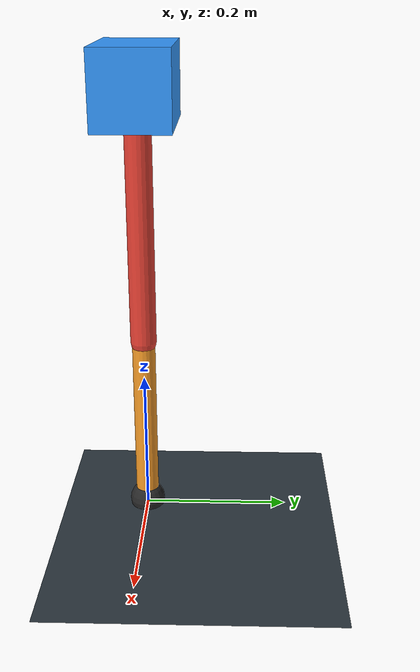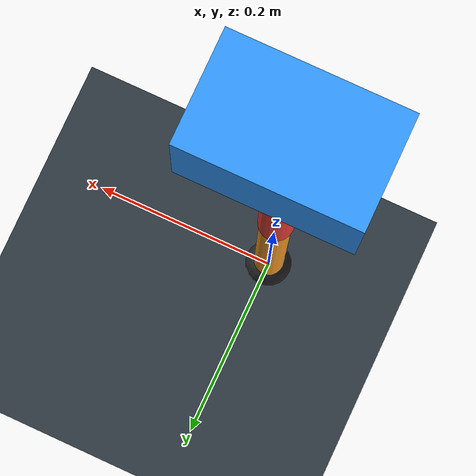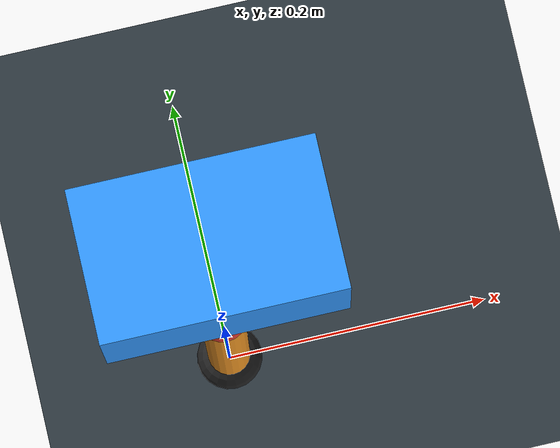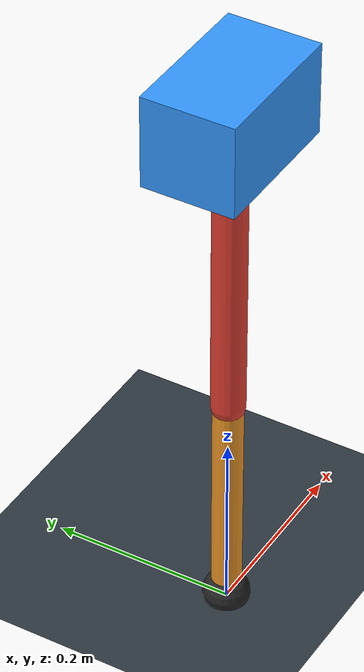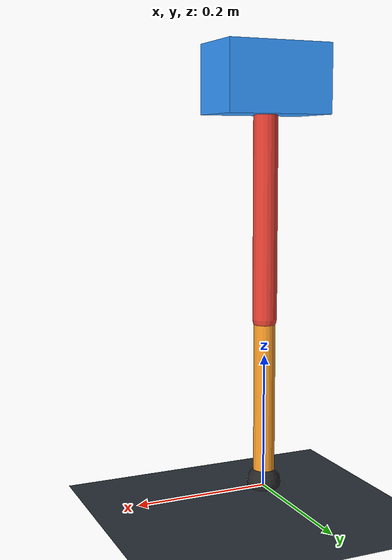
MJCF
<mujoco model="single_axis_two_bar">
  <compiler angle="radian" inertiafromgeom="true"/>
  <option timestep="0.001" integrator="implicitfast" gravity="0 0 -9.81"/>
  <default>
    <joint damping="0.08"/>
    <geom friction="1.2 0.01 0.0001" condim="3"/>
  </default>
  <worldbody>
    <geom name="floor" type="plane" size="5 5 0.1" rgba="0.18 0.22 0.25 1"/>
    <body name="carriage" pos="0 0 0.6024934573693436">
      <joint name="pole_slide" type="slide" axis="0 0 1"/>
      <geom name="payload" type="box" size="0.08 0.05 0.05" mass="2.657167252373268" rgba="0.2 0.6 1 1"/>
      <body name="thigh" pos="0 0 0">
        <joint name="hip" type="hinge" axis="0 1 0"/>
        <geom name="thigh_link" type="capsule" fromto="0 0 0 0 0 -0.347426518307582" size="0.018" mass="0.2475459851305496" rgba="0.9 0.25 0.2 1"/>
        <body name="shank" pos="0 0 -0.347426518307582">
          <joint name="knee" type="hinge" axis="0 1 0"/>
          <geom name="shank_link" type="capsule" fromto="0 0 0 0 0 -0.2479275614546279" size="0.016" mass="0.17665166361010437" rgba="0.95 0.6 0.15 1"/>
          <geom name="foot" type="sphere" pos="0 0 -0.2479275614546279" size="0.025" mass="0.03" rgba="0.15 0.15 0.15 1"/>
          <site name="toe" pos="0 0 -0.2479275614546279" size="0.008"/>
        </body>
      </body>
    </body>
  </worldbody>
  <actuator>
    <motor name="hip_motor" joint="hip" ctrlrange="-51.67755731491137 51.67755731491137"/>
    <motor name="knee_motor" joint="knee" ctrlrange="-82.540364792178 82.540364792178"/>
  </actuator>
</mujoco>
